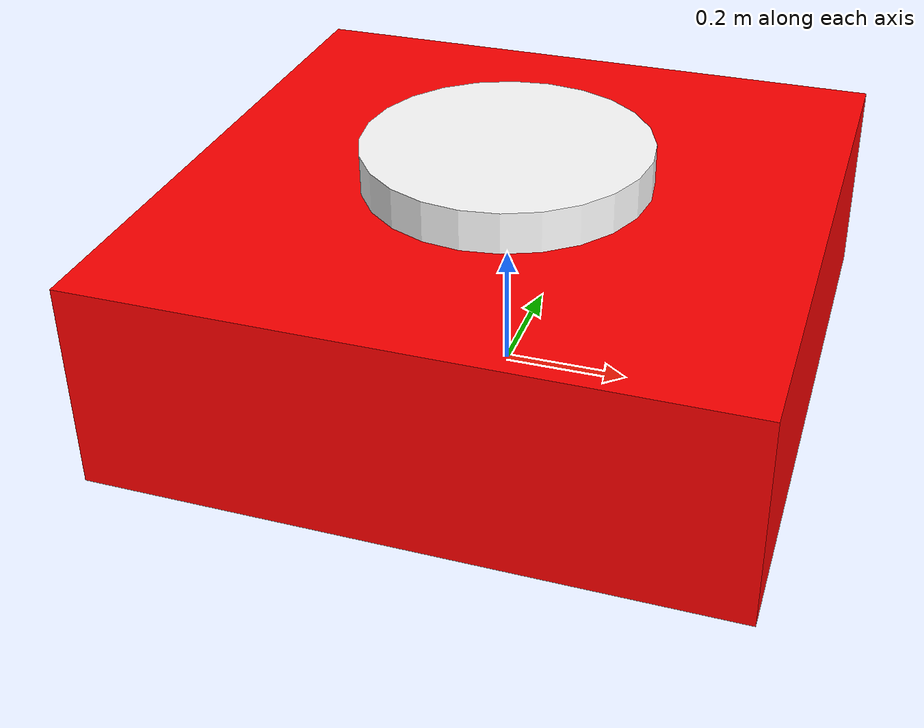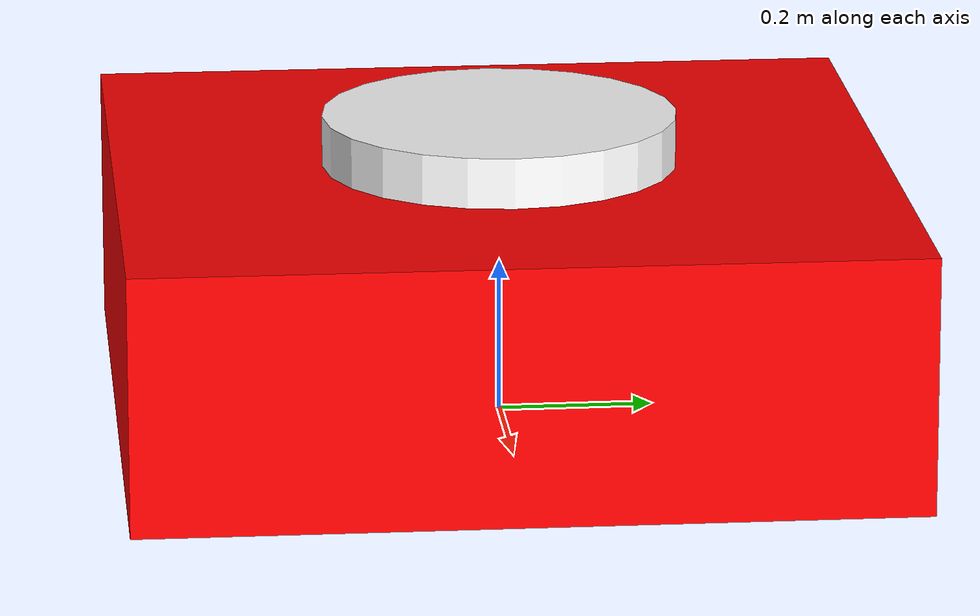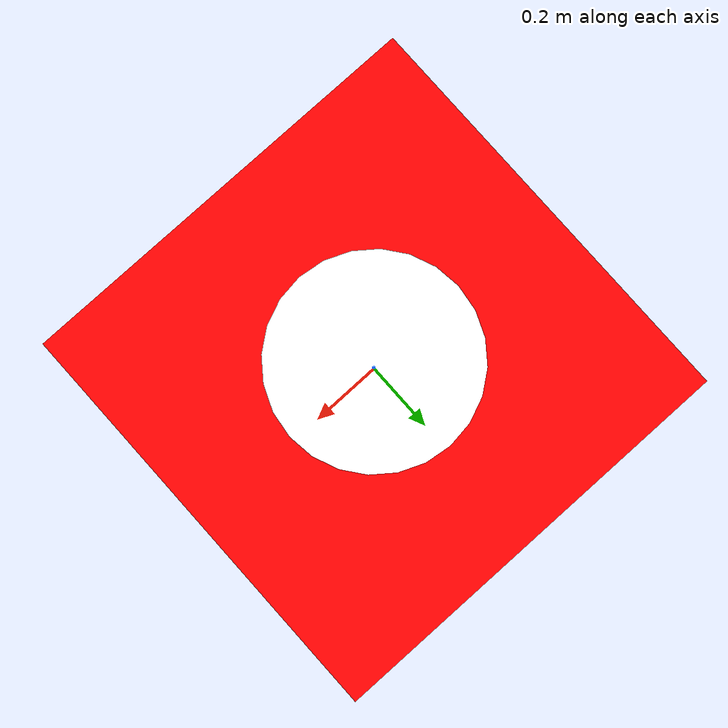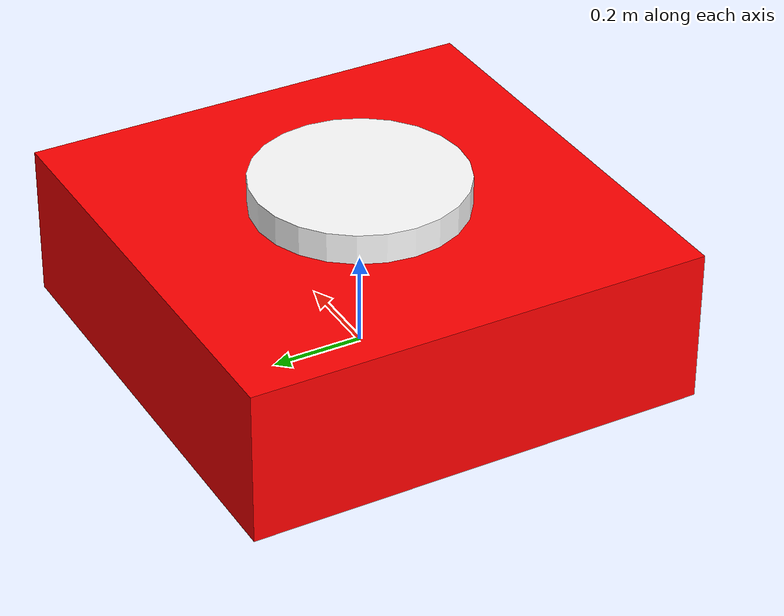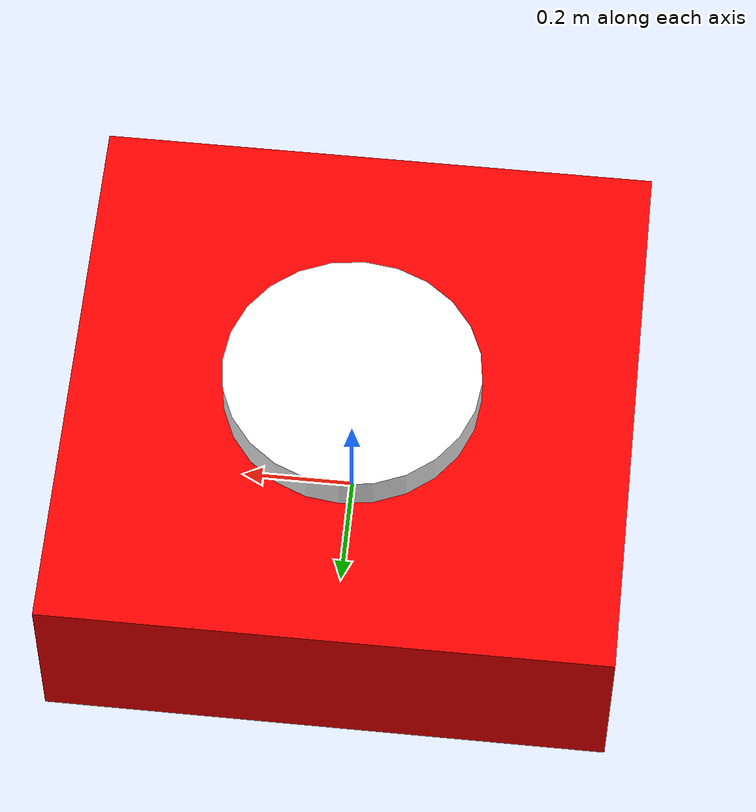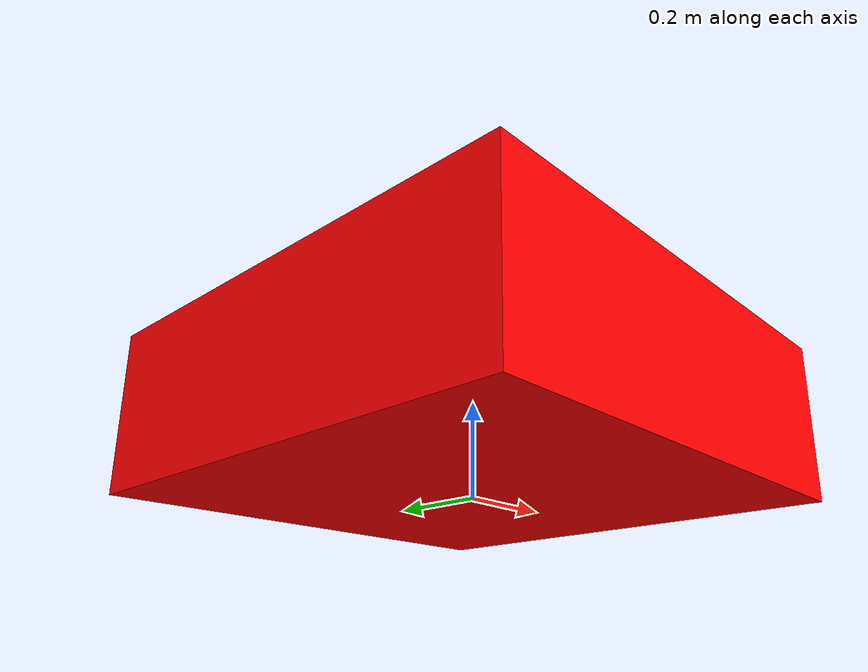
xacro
<?xml version="1.0"?>
<robot name="justbaked">

<link name="base_link">
    <visual name="frame">
        <origin xyz="0.0 0.0 0.16666665" rpy="0.0 0.0 0.0"/>
        <geometry>
            <box size="1.0 1.0 0.3333333"/>
        </geometry>
        <material name="red">
            <color rgba="1.0 0.0 0.0 0.9"/>
        </material>
    </visual>
    <collision>
        <origin xyz="0.0 0.0 0.05" rpy="0.0 0.0 0.0"/>
        <geometry>
            <box size="1.0 1.0 0.3333333"/>
        </geometry>
    </collision>
</link>

<joint name="joint_name" type="continuous">
    <origin xyz="0.0 0.0 0.3661417" rpy="0.0 0.0 0.0"/>
    <parent link="base_link"/>
    <child link="lidar"/>
    <axis xyz="0.0 0.0 1.0"/>
</joint>

<link name="lidar">
    <visual name="lidar">
        <origin xyz="0.0 0.0 0.0" rpy="0.0 0.0 0.0"/>
        <geometry>
            <cylinder radius="0.229659" length="0.0656168"/>
        </geometry>
        <material name="white">
            <color rgba="1.0 1.0 1.0 1.0"/>
        </material>
    </visual>
</link>

</robot>
